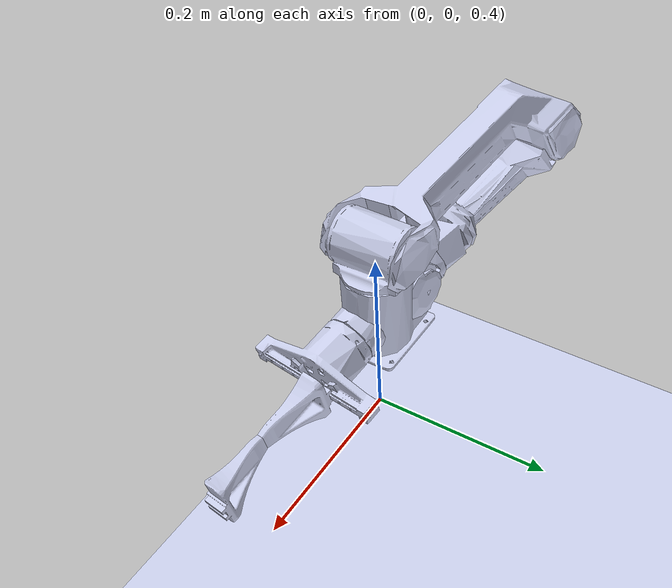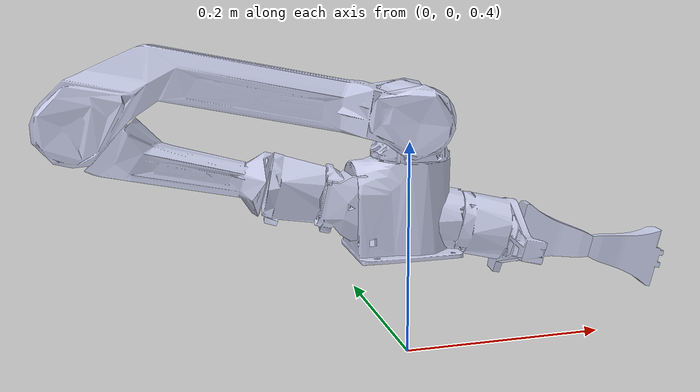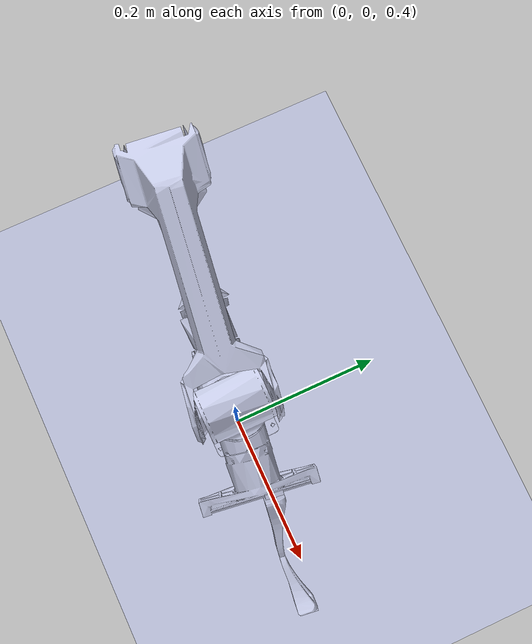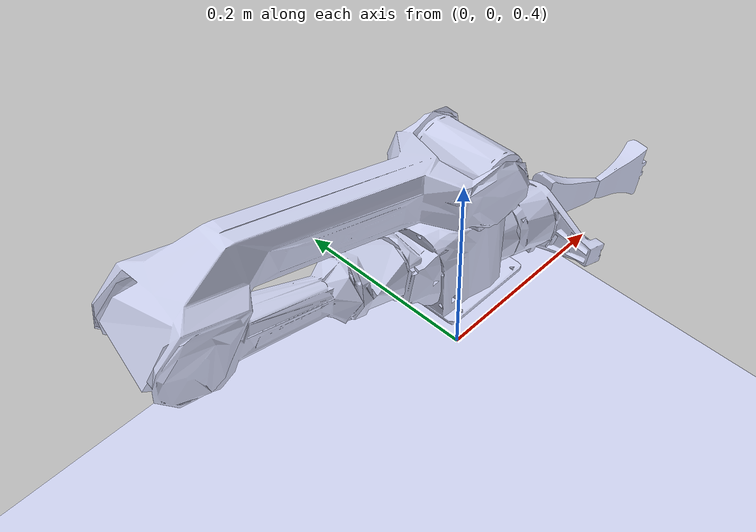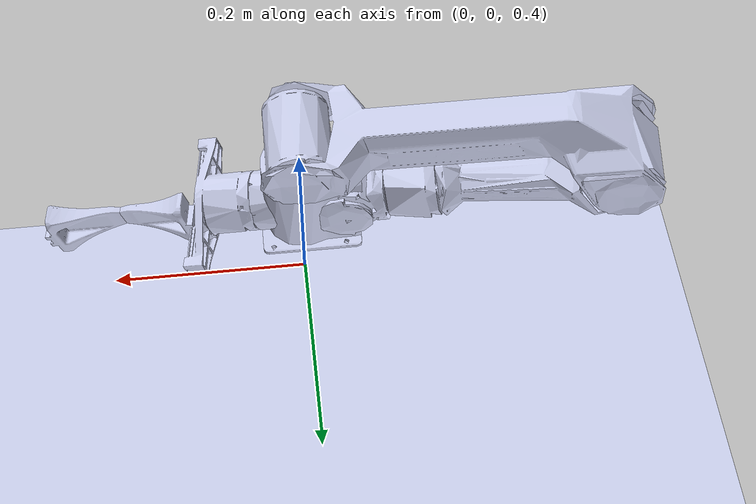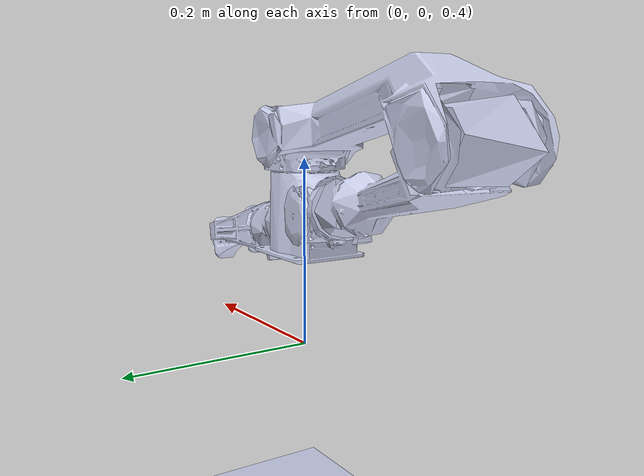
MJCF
<?xml version="1.0" encoding="utf-8"?>
<!-- Piper X Robotic Arm - MuJoCo MJCF Model
     Converted from URDF: piper_ros/src/piper_description/urdf/piper_description.urdf -->
<mujoco model="piper">
  <compiler angle="radian" meshdir="piper_ros/src/piper_description/meshes"/>

  <option timestep="0.002" gravity="0 0 -9.81"/>

  <default>
    <joint damping="50" armature="0.5"/>
    <geom rgba="0.8 0.82 0.93 1" friction="1 0.005 0.0001"/>
    <motor ctrlrange="-100 100" ctrllimited="true"/>
  </default>

  <asset>
    <mesh name="base_link" file="base_link.STL"/>
    <mesh name="link1" file="link1.STL"/>
    <mesh name="link2" file="link2.STL"/>
    <mesh name="link3" file="link3.STL"/>
    <mesh name="link4" file="link4.STL"/>
    <mesh name="link5" file="link5.STL"/>
    <mesh name="link6" file="link6.STL"/>
    <mesh name="gripper_base" file="gripper_base.STL"/>
    <mesh name="link7" file="link7.STL"/>
    <mesh name="link8" file="link8.STL"/>
    <texture type="skybox" builtin="gradient" rgb1="0.3 0.5 0.7" rgb2="0 0 0" width="512" height="512"/>
    <texture name="grid" type="2d" builtin="checker" rgb1="0.2 0.2 0.2" rgb2="0.3 0.3 0.3" width="512" height="512"/>
    <material name="grid" texture="grid" texrepeat="8 8" reflectance="0.2"/>
  </asset>

  <worldbody>
    <light directional="true" diffuse="0.8 0.8 0.8" specular="0.2 0.2 0.2" pos="0 0 5" dir="0 0 -1"/>
    <light directional="true" diffuse="0.4 0.4 0.4" specular="0.1 0.1 0.1" pos="0 5 3" dir="0 -1 -0.5"/>

    <geom name="floor" type="plane" size="2 2 0.1" material="grid"/>

    <!-- Base mounted on table -->
    <body name="base_link" pos="0 0 0.5">
      <inertial pos="-0.00474 0.00003 0.0415" mass="1.02"
                diaginertia="0.00283 0.00267 0.00090"/>
      <geom type="mesh" mesh="base_link"/>

      <!-- Joint 1: Base rotation -->
      <body name="link1" pos="0 0 0.123">
        <inertial pos="0.00012 0.00010 -0.00439" mass="0.71"
                  diaginertia="0.00049 0.00040 0.00044"/>
        <joint name="joint1" type="hinge" axis="0 0 1"
               range="-2.618 2.618" damping="80"/>
        <geom type="mesh" mesh="link1"/>

        <!-- Joint 2: Shoulder -->
        <body name="link2" pos="0 0 0" euler="1.5708 -0.1359 -3.1416">
          <inertial pos="0.199 -0.011 0.001" mass="1.17"
                    diaginertia="0.0679 0.0677 0.00117"/>
          <joint name="joint2" type="hinge" axis="0 0 1"
                 range="0 3.14" damping="100"/>
          <geom type="mesh" mesh="link2"/>

          <!-- Joint 3: Elbow -->
          <body name="link3" pos="0.28503 0 0" euler="0 0 -1.7939">
            <inertial pos="-0.020 -0.134 -0.0005" mass="0.5"
                      diaginertia="0.0138 0.0136 0.00045"/>
            <joint name="joint3" type="hinge" axis="0 0 1"
                   range="-2.967 0" damping="80"/>
            <geom type="mesh" mesh="link3"/>

            <!-- Joint 4: Wrist 1 -->
            <body name="link4" pos="-0.021984 -0.25075 0" euler="1.5708 0 0">
              <inertial pos="-0.0001 0.0009 -0.005" mass="0.38"
                        diaginertia="0.00019 0.00019 0.00015"/>
              <joint name="joint4" type="hinge" axis="0 0 1"
                     range="-1.745 1.745" damping="40"/>
              <geom type="mesh" mesh="link4"/>

              <!-- Joint 5: Wrist 2 -->
              <body name="link5" pos="0 0 0" euler="-1.5708 0 0">
                <inertial pos="-0.00004 -0.0566 -0.0037" mass="0.383"
                          diaginertia="0.00166 0.00164 0.00019"/>
                <joint name="joint5" type="hinge" axis="0 0 1"
                       range="-1.22 1.22" damping="40"/>
                <geom type="mesh" mesh="link5"/>

                <!-- Joint 6: Wrist 3 -->
                <body name="link6" pos="0.0000883 -0.091 0" euler="1.5708 0 0">
                  <inertial pos="-0.00009 0.00001 -0.002" mass="0.007"
                            diaginertia="0.000001 0.000001 0.000001"/>
                  <joint name="joint6" type="hinge" axis="0 0 1"
                         range="-2.0944 2.0944" damping="30"/>
                  <geom type="mesh" mesh="link6" rgba="0.9 0.92 0.93 1"/>

                  <!-- Gripper Base (fixed to link6) -->
                  <body name="gripper_base" pos="0 0 0">
                    <inertial pos="-0.0002 0.00008 0.032" mass="0.45"
                              diaginertia="0.00093 0.00071 0.00039"/>
                    <geom type="mesh" mesh="gripper_base"/>

                    <!-- Gripper Finger 1 (left) -->
                    <body name="link7" pos="0 0 0.1358" euler="1.5708 0 0">
                      <inertial pos="0.00065 -0.049 0.0097" mass="0.025"
                                diaginertia="0.000074 0.000075 0.000008"/>
                      <joint name="joint7" type="slide" axis="0 0 1"
                             range="0 0.035" damping="1"/>
                      <geom type="mesh" mesh="link7"/>
                    </body>

                    <!-- Gripper Finger 2 (right) -->
                    <body name="link8" pos="0 0 0.1358" euler="1.5708 0 -3.1416">
                      <inertial pos="0.00065 -0.049 0.0097" mass="0.025"
                                diaginertia="0.000074 0.000075 0.000008"/>
                      <joint name="joint8" type="slide" axis="0 0 -1"
                             range="-0.035 0" damping="1"/>
                      <geom type="mesh" mesh="link8"/>
                    </body>
                  </body>
                </body>
              </body>
            </body>
          </body>
        </body>
      </body>
    </body>
  </worldbody>

  <actuator>
    <!-- Position servos with built-in PD control - much more stable -->
    <position name="servo1" joint="joint1" kp="200" kv="20"/>
    <position name="servo2" joint="joint2" kp="300" kv="30"/>
    <position name="servo3" joint="joint3" kp="250" kv="25"/>
    <position name="servo4" joint="joint4" kp="150" kv="15"/>
    <position name="servo5" joint="joint5" kp="150" kv="15"/>
    <position name="servo6" joint="joint6" kp="100" kv="10"/>
    <position name="gripper1" joint="joint7" kp="100"/>
    <position name="gripper2" joint="joint8" kp="100"/>
  </actuator>

  <sensor>
    <jointpos name="pos1" joint="joint1"/>
    <jointpos name="pos2" joint="joint2"/>
    <jointpos name="pos3" joint="joint3"/>
    <jointpos name="pos4" joint="joint4"/>
    <jointpos name="pos5" joint="joint5"/>
    <jointpos name="pos6" joint="joint6"/>
    <jointvel name="vel1" joint="joint1"/>
    <jointvel name="vel2" joint="joint2"/>
    <jointvel name="vel3" joint="joint3"/>
    <jointvel name="vel4" joint="joint4"/>
    <jointvel name="vel5" joint="joint5"/>
    <jointvel name="vel6" joint="joint6"/>
  </sensor>
</mujoco>
